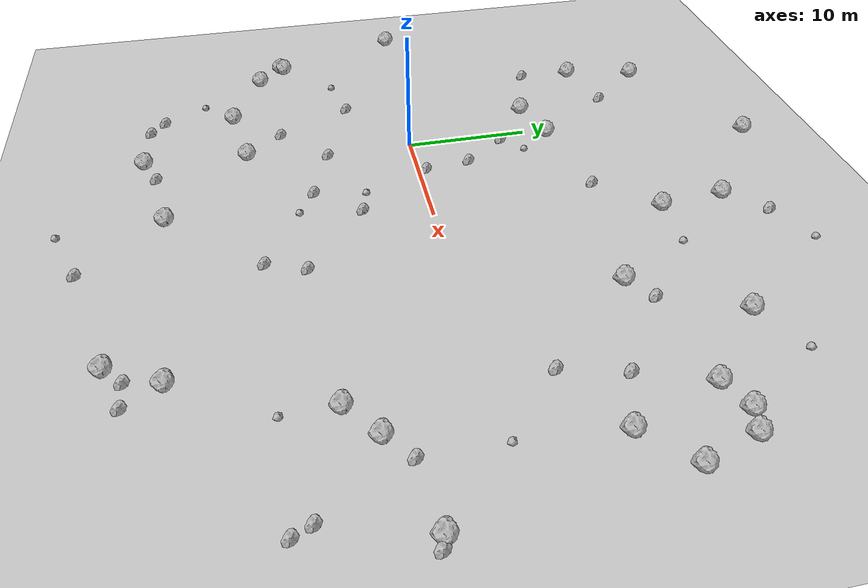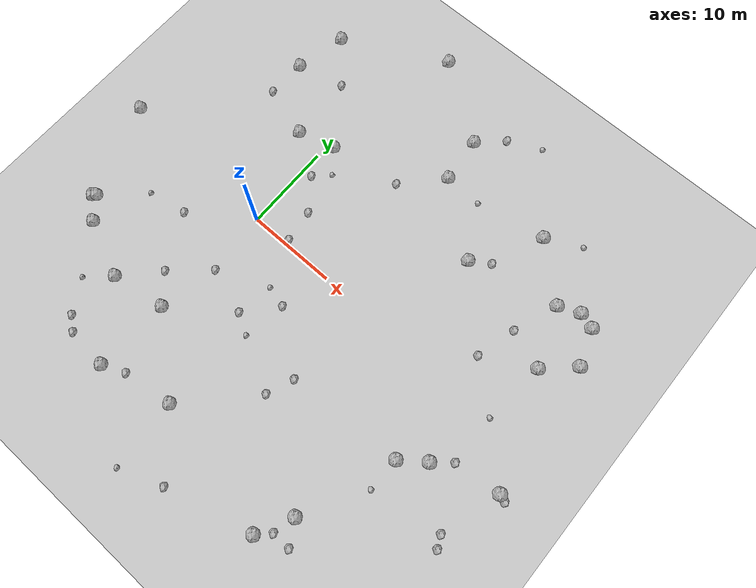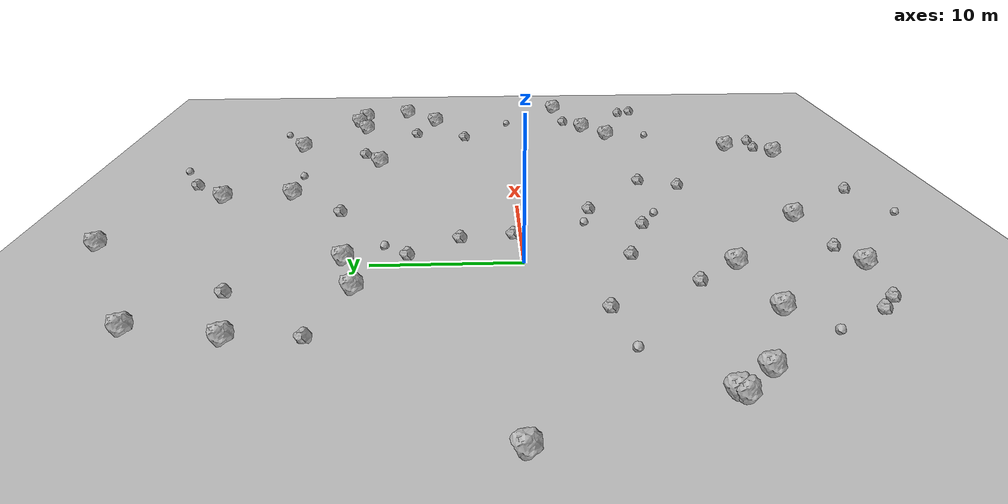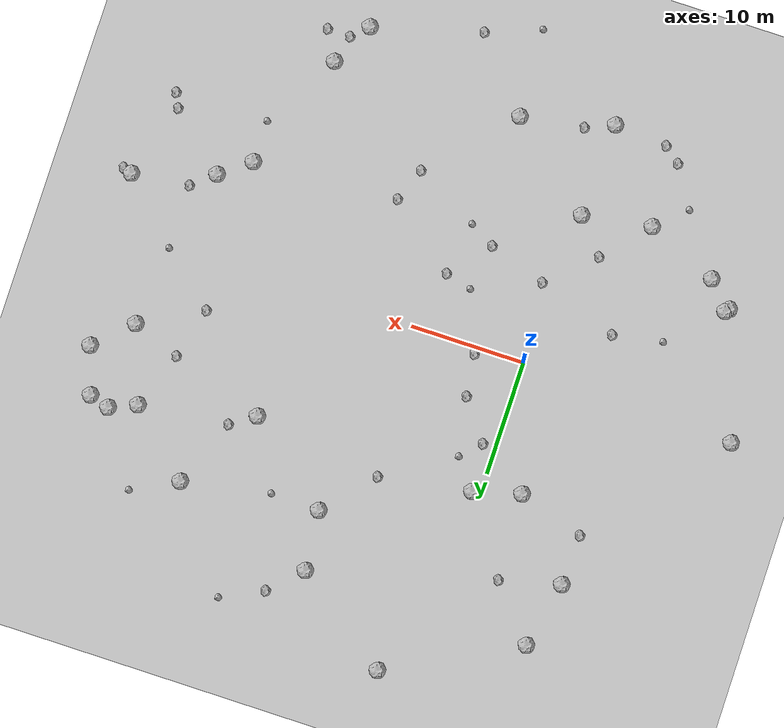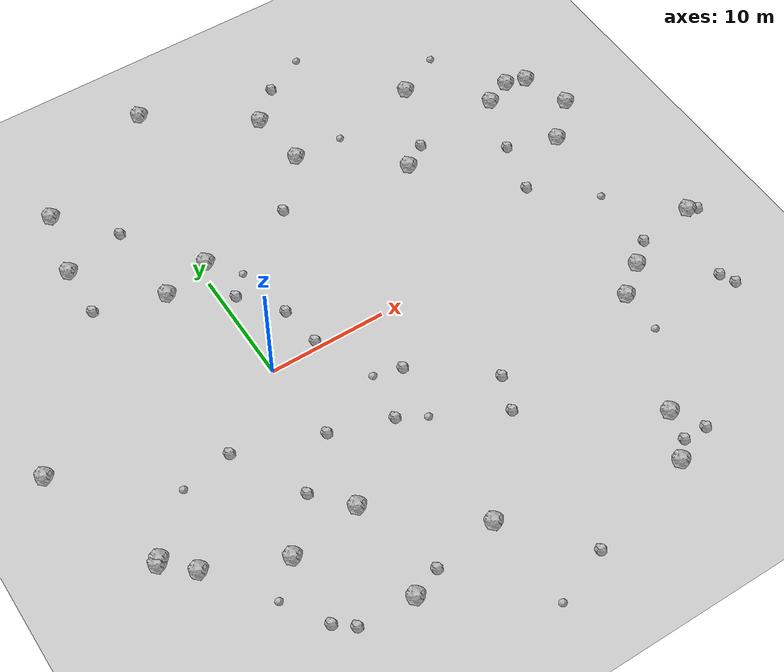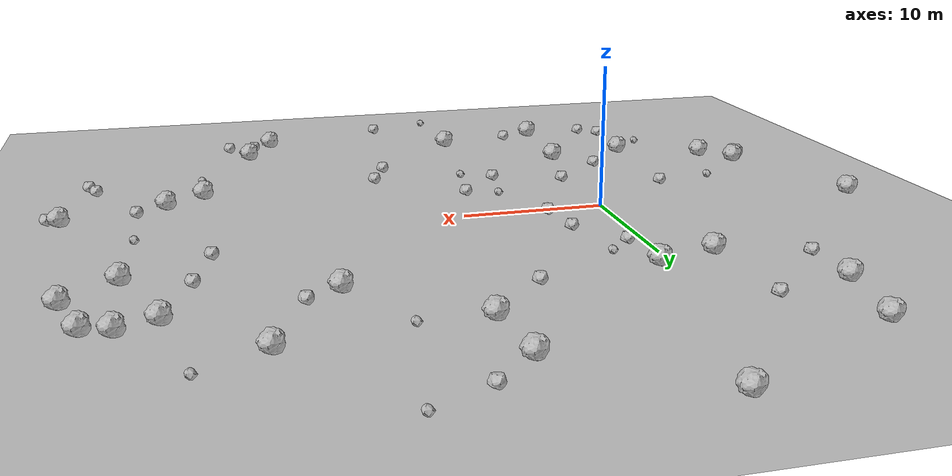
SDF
<sdf version="1.6">
 <world name="default">
  <include><uri>model://custom_ground</uri></include>
  <include><uri>model://sun</uri></include>
  <model name="rock1_0_0">
   <include><uri>model://rock1</uri><pose>-13.089091662843057 -11.832418343263008 0.5 0 0 0</pose></include>
  </model>
  <model name="rock1_0_1">
   <include><uri>model://rock1</uri><pose>-18.93702736157908 1.0147407592590199 0.5 0 0 0</pose></include>
  </model>
  <model name="rock1_0_2">
   <include><uri>model://rock1</uri><pose>-0.8347007762944791 -13.585848574019423 0.5 0 0 0</pose></include>
  </model>
  <model name="rock1_0_3">
   <include><uri>model://rock1</uri><pose>29.932797042532684 -7.243154206481332 0.5 0 0 0</pose></include>
  </model>
  <model name="rock1_0_4">
   <include><uri>model://rock1</uri><pose>-6.890203062122961 -14.525393870647296 0.5 0 0 0</pose></include>
  </model>
  <model name="rock1_0_5">
   <include><uri>model://rock1</uri><pose>32.49217723000853 14.627477199168936 0.5 0 0 0</pose></include>
  </model>
  <model name="rock1_0_6">
   <include><uri>model://rock1</uri><pose>21.43223320242025 -23.423942304812943 0.5 0 0 0</pose></include>
  </model>
  <model name="rock1_0_7">
   <include><uri>model://rock1</uri><pose>-15.017050004234143 -9.530729980270202 0.5 0 0 0</pose></include>
  </model>
  <model name="rock1_0_8">
   <include><uri>model://rock1</uri><pose>32.50418886825029 7.092666201571873 0.5 0 0 0</pose></include>
  </model>
  <model name="rock1_0_9">
   <include><uri>model://rock1</uri><pose>23.401110703666525 -19.633946964449937 0.5 0 0 0</pose></include>
  </model>
  <model name="rock1_0_10">
   <include><uri>model://rock1</uri><pose>34.248013257484665 14.088360279170779 0.5 0 0 0</pose></include>
  </model>
  <model name="rock1_0_11">
   <include><uri>model://rock1</uri><pose>27.312724513406494 -9.237385482297505 0.5 0 0 0</pose></include>
  </model>
  <model name="rock1_0_12">
   <include><uri>model://rock1</uri><pose>20.1517577268785 11.388540485116543 0.5 0 0 0</pose></include>
  </model>
  <model name="rock1_0_13">
   <include><uri>model://rock1</uri><pose>12.162409509235978 22.59898639269818 0.5 0 0 0</pose></include>
  </model>
  <model name="rock1_0_14">
   <include><uri>model://rock1</uri><pose>30.141948060873517 13.62944410867371 0.5 0 0 0</pose></include>
  </model>
  <model name="rock1_0_15">
   <include><uri>model://rock1</uri><pose>3.7012101154371955 28.74447005636494 0.5 0 0 0</pose></include>
  </model>
  <model name="rock1_0_16">
   <include><uri>model://rock1</uri><pose>12.67820393873562 17.390035511015995 0.5 0 0 0</pose></include>
  </model>
  <model name="rock1_0_17">
   <include><uri>model://rock1</uri><pose>24.660150523331048 18.70019581461927 0.5 0 0 0</pose></include>
  </model>
  <model name="rock1_0_18">
   <include><uri>model://rock1</uri><pose>-1.206696859660287 -21.885403303464663 0.5 0 0 0</pose></include>
  </model>
  <model name="rock1_0_19">
   <include><uri>model://rock1</uri><pose>0.7740740582977779 11.80666224057886 0.5 0 0 0</pose></include>
  </model>
  <model name="rock1_0_20">
   <include><uri>model://rock1</uri><pose>-7.66027476277274 22.79978689815311 0.5 0 0 0</pose></include>
  </model>
  <model name="rock1_0_21">
   <include><uri>model://rock1</uri><pose>-3.3536839200663806 10.691382111945593 0.5 0 0 0</pose></include>
  </model>
  <model name="rock1_0_22">
   <include><uri>model://rock1</uri><pose>-8.93847361363517 16.969644685988662 0.5 0 0 0</pose></include>
  </model>
  <model name="rock1_0_23">
   <include><uri>model://rock1</uri><pose>35.62070626472358 10.059102692892033 0.5 0 0 0</pose></include>
  </model>
  <model name="rock1_0_24">
   <include><uri>model://rock1</uri><pose>-15.29807296429543 -9.822260649000572 0.5 0 0 0</pose></include>
  </model>
  <model name="rock1_0_25">
   <include><uri>model://rock1</uri><pose>36.928700345798156 -5.045934607378008 0.5 0 0 0</pose></include>
  </model>
  <model name="rock1_0_26">
   <include><uri>model://rock1</uri><pose>6.801815067021341 -20.04365927238478 0.5 0 0 0</pose></include>
  </model>
  <model name="rock2_0_0">
   <include><uri>model://rock2</uri><pose>8.572947925330489 -5.2347544866569535 0.3 0 0 0</pose></include>
  </model>
  <model name="rock2_0_1">
   <include><uri>model://rock2</uri><pose>14.820319088158385 25.303114689058766 0.3 0 0 0</pose></include>
  </model>
  <model name="rock2_0_2">
   <include><uri>model://rock2</uri><pose>24.828510417500155 -22.13176590087323 0.3 0 0 0</pose></include>
  </model>
  <model name="rock2_0_3">
   <include><uri>model://rock2</uri><pose>-3.710742086907839 18.303191091329793 0.3 0 0 0</pose></include>
  </model>
  <model name="rock2_0_4">
   <include><uri>model://rock2</uri><pose>-7.334507891325327 -20.37330994851792 0.3 0 0 0</pose></include>
  </model>
  <model name="rock2_0_5">
   <include><uri>model://rock2</uri><pose>14.550998540156542 -10.01347153961084 0.3 0 0 0</pose></include>
  </model>
  <model name="rock2_0_6">
   <include><uri>model://rock2</uri><pose>3.695000222824433 4.24963126502098 0.3 0 0 0</pose></include>
  </model>
  <model name="rock2_0_7">
   <include><uri>model://rock2</uri><pose>8.777257728213637 13.129892664056399 0.3 0 0 0</pose></include>
  </model>
  <model name="rock2_0_8">
   <include><uri>model://rock2</uri><pose>1.2386333509625622 -20.84903993150591 0.3 0 0 0</pose></include>
  </model>
  <model name="rock2_0_9">
   <include><uri>model://rock2</uri><pose>-6.488197345935735 -4.613155390178996 0.3 0 0 0</pose></include>
  </model>
  <model name="rock2_0_10">
   <include><uri>model://rock2</uri><pose>11.9412992990442 -26.032302474073298 0.3 0 0 0</pose></include>
  </model>
  <model name="rock2_0_11">
   <include><uri>model://rock2</uri><pose>-9.14920212533292 12.553090238857536 0.3 0 0 0</pose></include>
  </model>
  <model name="rock2_0_12">
   <include><uri>model://rock2</uri><pose>34.884150128605725 -11.623467143645371 0.3 0 0 0</pose></include>
  </model>
  <model name="rock2_0_13">
   <include><uri>model://rock2</uri><pose>27.10915872406116 4.1577392285760695 0.3 0 0 0</pose></include>
  </model>
  <model name="rock2_0_14">
   <include><uri>model://rock2</uri><pose>-5.912899516125364 -21.528874401265057 0.3 0 0 0</pose></include>
  </model>
  <model name="rock2_0_15">
   <include><uri>model://rock2</uri><pose>31.866545633346583 -5.607914808312405 0.3 0 0 0</pose></include>
  </model>
  <model name="rock2_0_16">
   <include><uri>model://rock2</uri><pose>5.600892719301214 -8.69744728328093 0.3 0 0 0</pose></include>
  </model>
  <model name="rock2_0_17">
   <include><uri>model://rock2</uri><pose>37.71638011874665 -5.316812531203226 0.3 0 0 0</pose></include>
  </model>
  <model name="rock2_0_18">
   <include><uri>model://rock2</uri><pose>1.120975345511809 7.672495860541339 0.3 0 0 0</pose></include>
  </model>
  <model name="rock2_0_19">
   <include><uri>model://rock2</uri><pose>22.797285518925463 -22.089088277689438 0.3 0 0 0</pose></include>
  </model>
  <model name="rock2_0_20">
   <include><uri>model://rock2</uri><pose>0.5626221031082679 -7.026158543679909 0.3 0 0 0</pose></include>
  </model>
  <model name="rock2_0_21">
   <include><uri>model://rock2</uri><pose>4.187137738430447 0.5784497907685662 0.3 0 0 0</pose></include>
  </model>
  <model name="rock2_0_22">
   <include><uri>model://rock2</uri><pose>13.405258731528768 -12.981219265364448 0.3 0 0 0</pose></include>
  </model>
  <model name="rock2_0_23">
   <include><uri>model://rock2</uri><pose>28.319562353401295 8.66499649101413 0.3 0 0 0</pose></include>
  </model>
  <model name="rock2_0_24">
   <include><uri>model://rock2</uri><pose>22.258283354230947 12.839463508042627 0.3 0 0 0</pose></include>
  </model>
  <model name="rock2_0_25">
   <include><uri>model://rock2</uri><pose>-3.373290546651482 -10.632051894355016 0.3 0 0 0</pose></include>
  </model>
  <model name="rock2_0_26">
   <include><uri>model://rock2</uri><pose>35.473501248330656 -12.888903833934329 0.3 0 0 0</pose></include>
  </model>
  <model name="rock3_0_0">
   <include><uri>model://rock3</uri><pose>16.931533876584886 17.25567200103302 0.2 0 0 0</pose></include>
  </model>
  <model name="rock3_0_1">
   <include><uri>model://rock3</uri><pose>31.825411440912923 0.011909904426484985 0.2 0 0 0</pose></include>
  </model>
  <model name="rock3_0_2">
   <include><uri>model://rock3</uri><pose>28.574504500245823 20.73678743024896 0.2 0 0 0</pose></include>
  </model>
  <model name="rock3_0_3">
   <include><uri>model://rock3</uri><pose>6.230687683696981 -4.645313633200146 0.2 0 0 0</pose></include>
  </model>
  <model name="rock3_0_4">
   <include><uri>model://rock3</uri><pose>7.793366518481488 -10.014023756494929 0.2 0 0 0</pose></include>
  </model>
  <model name="rock3_0_5">
   <include><uri>model://rock3</uri><pose>-10.845762506348823 -5.4383583036962655 0.2 0 0 0</pose></include>
  </model>
  <model name="rock3_0_6">
   <include><uri>model://rock3</uri><pose>-9.520101602108689 -16.937297462095067 0.2 0 0 0</pose></include>
  </model>
  <model name="rock3_0_7">
   <include><uri>model://rock3</uri><pose>27.26444430845052 -12.994180432944432 0.2 0 0 0</pose></include>
  </model>
  <model name="rock3_0_8">
   <include><uri>model://rock3</uri><pose>7.194207568899039 -27.886507502746095 0.2 0 0 0</pose></include>
  </model>
  <model name="rock3_0_9">
   <include><uri>model://rock3</uri><pose>2.7330112445955876 9.282932225079037 0.2 0 0 0</pose></include>
  </model>
  <model name="rock3_0_10">
   <include><uri>model://rock3</uri><pose>18.463510231625577 27.055020815331936 0.2 0 0 0</pose></include>
  </model>
 </world>
</sdf>
